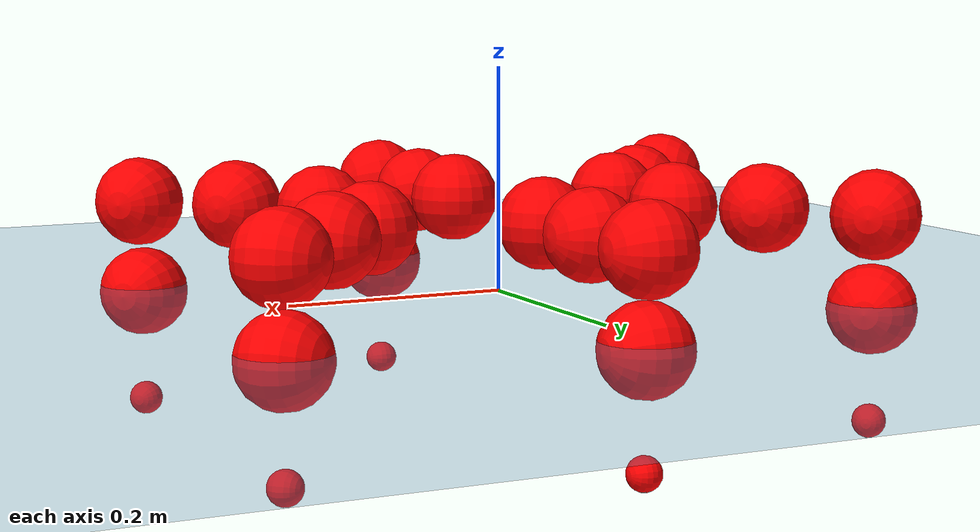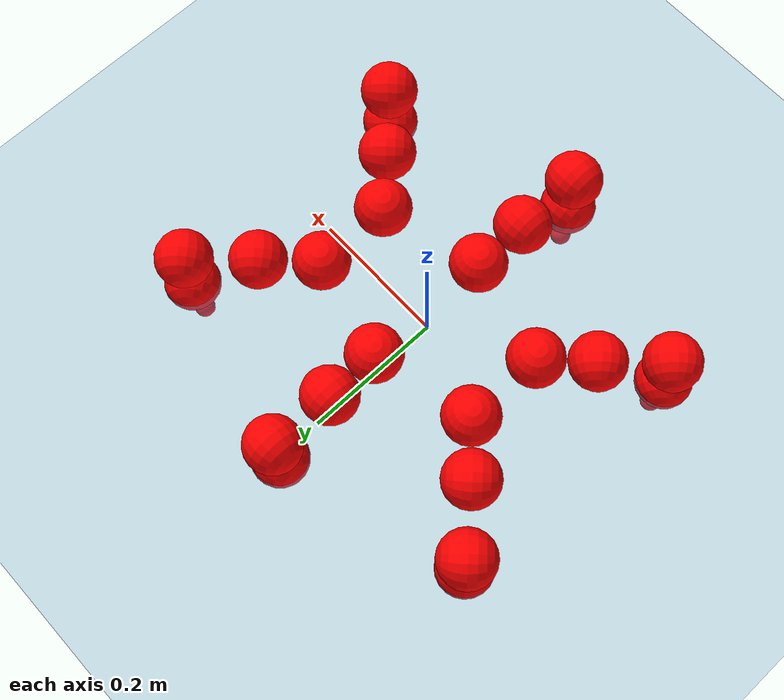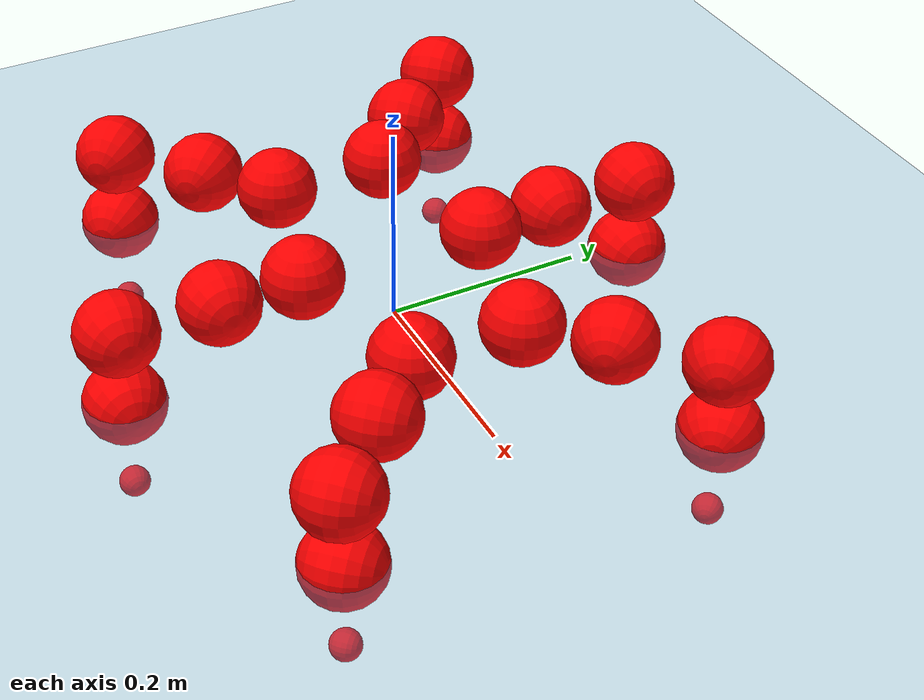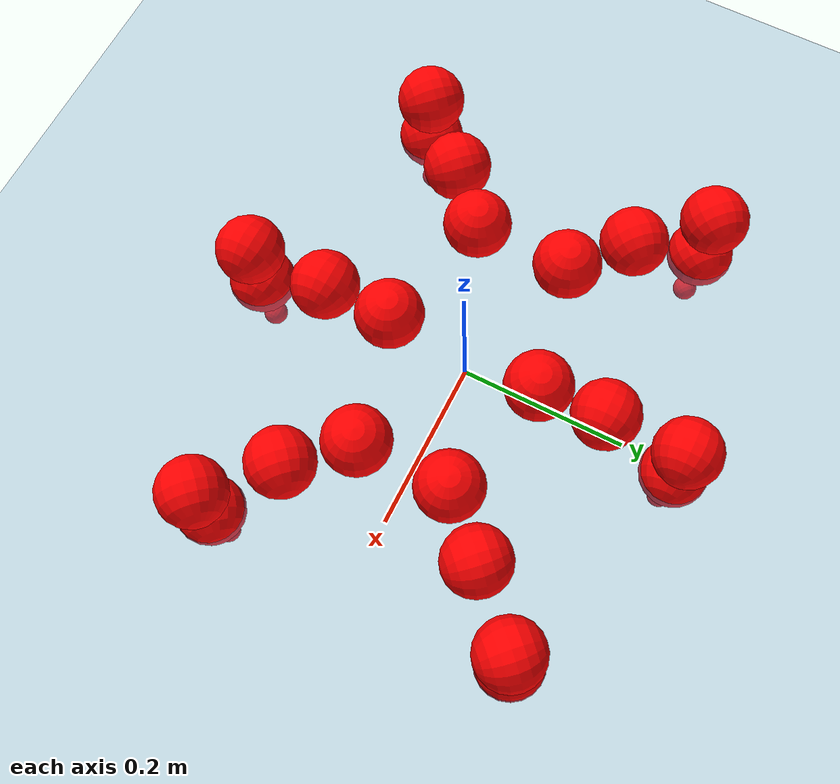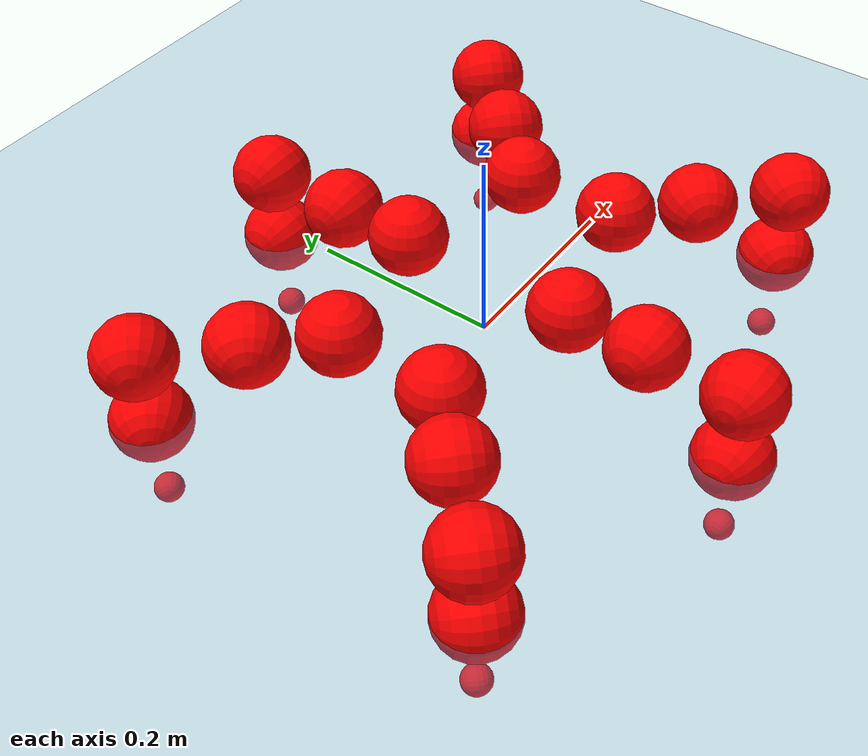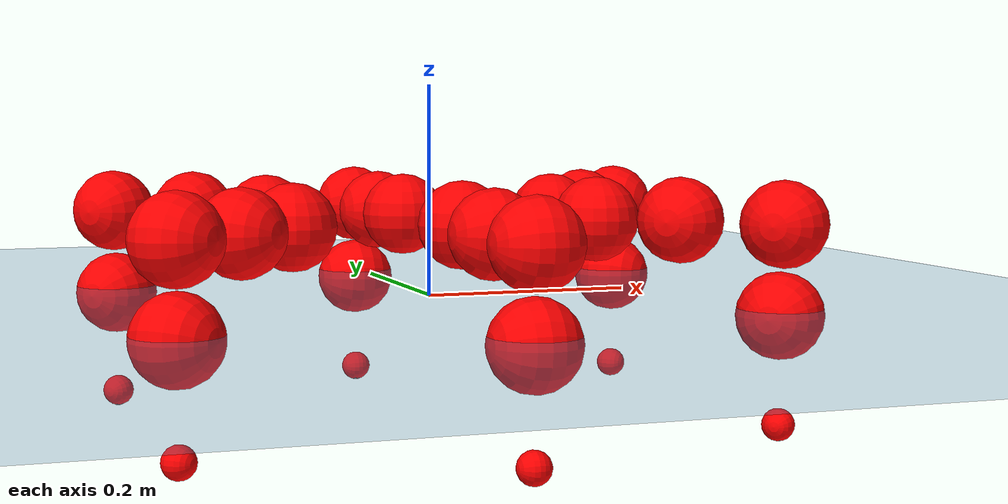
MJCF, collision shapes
<mujoco model="Golem">
  <compiler angle="radian" assetdir="assets" balanceinertia="true" inertiafromgeom="false"/>

  <option timestep="0.005" density="1.2" viscosity="2e-05"/>

  <size nkey="1"/>

  <visual>
    <quality shadowsize="8192"/>
    <map shadowclip="0.5"/>
  </visual>

  <default>
    <default class="/">
      <joint armature="0.01" damping="0.01" frictionloss="0.01"/>
      <geom contype="0" conaffinity="0" group="1" solref="-1000 -80"/>
      <site size="0.01 0.005 0.005" group="5"/>
      <general forcelimited="true" biastype="affine" gainprm="25" biasprm="0 -25 -0.5"/>
      <default class="visual">
        <geom type="mesh" group="2"/>
      </default>
      <default class="collision">
        <geom group="3"/>
      </default>
      <default class="foot">
        <geom size="0.01 0 0" condim="6" group="4" priority="1" solimp="0.015 1 0.01"/>
      </default>
      <default class="reward_collision_sphere">
        <geom group="5" rgba="1 0 0 1"/>
      </default>
    </default>
  </default>

  <asset>
    <texture type="skybox" colorspace="auto" name="//unnamed_texture_0" builtin="gradient" rgb1="0.95 0.95 0.95" rgb2="0.95 0.95 0.95" width="100" height="600"/>
    <texture type="2d" colorspace="auto" name="texplane" builtin="checker" rgb1="0.345 0.575 0.748" rgb2="0.345 0.575 0.748" markrgb="1 1 1" width="512" height="512"/>
    <material name="MatPlane" class="/" texture="texplane" texuniform="true" texrepeat="2 2" specular="0.9"/>
    <mesh name="body" class="/" file="body.stl" scale="0.001 0.001 0.001"/>
    <mesh name="coxa" class="/" file="coxa.stl" scale="0.001 0.001 0.001"/>
    <mesh name="femur" class="/" file="femur.stl" scale="0.001 0.001 0.001"/>
    <mesh name="tibia" class="/" file="tibia.stl" scale="0.001 0.001 0.001"/>
    <mesh name="tarsus" class="/" file="tarsus.stl" scale="0.001 0.001 0.001"/>
  </asset>

  <worldbody>
    <geom name="floor" class="/" size="100 100 0.125" type="plane" group="0" material="MatPlane"/>
    <light name="toplight_shadow" class="/" pos="0 0 5" dir="0.0990148 0.0990148 -0.990148" type="directional" ambient="0.04 0.04 0.04" diffuse="0.55 0.55 0.55" specular="0.12 0.12 0.12"/>
    <light name="toplight_fill" class="/" pos="0 0 5" dir="0.0990148 0.0990148 -0.990148" type="directional" castshadow="false" ambient="0.04 0.04 0.04" diffuse="0.3 0.3 0.3" specular="0.08 0.08 0.08"/>
    <body name="trunk" pos="7.17494e-05 0.000107671 -0.00281577" quat="0.999999 -0.000371591 -0.0010033 0.000520949">
      <inertial pos="0.00279282 -0.00272446 -0.000340804" quat="0.999962 0.00630358 0.00148367 -0.00590706" mass="3.51815" diaginertia="0.00666795 0.00593948 0.0212964"/>
      <joint name="//unnamed_joint_0" type="free"/>
      <geom name="//unnamed_geom_1" class="/" pos="0 0 0.0744554" quat="1 0 0 0" type="mesh" rgba="0.9 0.9 0.9 1" mesh="body"/>
      <site name="imu" class="/" pos="0.114972 0.0112137 0.120135" size="0.0100146"/>
      <camera name="track" class="/" pos="0 -1.82657 0" quat="0.707107 0.707107 0 0" mode="trackcom"/>
      <camera name="ego_camera" class="/" pos="0.120607 0 0.116337" quat="-0.5 -0.5 0.5 0.5"/>
      <body name="coxa_RR" pos="-0.166081 -0.0763149 0.0760979" quat="0.382521 -0.000175854 1.30623e-05 -0.923947">
        <inertial pos="0.00254973 0.00170642 -0.0025481" quat="0.999924 0.00667995 0.00829214 -0.00622495" mass="0.202904" diaginertia="0.00665124 0.00639622 0.0210461"/>
        <joint name="coxa_joint_RR" class="/" pos="0 0 0" axis="-0.00026223 -0.00514177 -0.999987" stiffness="0.00395892" range="-3.09059 3.1068" armature="0.00988038" damping="0" frictionloss="0.0110748"/>
        <geom name="//unnamed_geom_2" class="/" type="mesh" rgba="0.2 0.2 0.2 1" mesh="coxa"/>
        <geom name="//unnamed_geom_3" class="reward_collision_sphere" size="0.0400586" pos="-0.0278323 0 0"/>
        <body name="femur_RR" pos="0.0523551 -0.00193532 0.000377353" quat="0.499549 -0.500423 0.499869 0.500158">
          <inertial pos="0.000258135 0.000945523 0.00275987" quat="0.9999 0.012425 -0.00410289 -0.00537597" mass="0.193464" diaginertia="0.00694357 0.00599834 0.0208642"/>
          <joint name="femur_joint_RR" class="/" pos="0 0 0" axis="0.00224745 -0.00265249 -0.999994" range="-3.10504 3.10381" armature="0.0110617" damping="0.0132828" frictionloss="0.0100204"/>
          <geom name="//unnamed_geom_4" class="/" type="mesh" rgba="0.9 0.9 0.9 1" mesh="femur"/>
          <geom name="//unnamed_geom_5" class="reward_collision_sphere" size="0.0400586"/>
          <body name="tibia_RR" pos="-0.00269565 -0.0963721 0.00126882" quat="6.02132e-05 1 0.000102421 0.000265451">
            <inertial pos="-0.000392393 0.00149625 2.96224e-05" quat="1 -8.62399e-06 -1.94494e-06 5.61504e-06" mass="0.195991" diaginertia="0.00672337 0.00616476 0.0208521"/>
            <joint name="tibia_joint_RR" class="/" pos="0 0 0" axis="-0.00118394 0.00897989 0.999959" range="-3.11099 3.14636" armature="0.00847577" damping="0.0119255" frictionloss="0.0101938"/>
            <geom name="//unnamed_geom_6" class="/" type="mesh" rgba="0.2 0.2 0.2 1" mesh="tibia"/>
            <geom name="//unnamed_geom_7" class="reward_collision_sphere" size="0.0400586"/>
            <body name="tarsus_RR" pos="0.0809733 0.00255149 -0.00105905" quat="0.999999 0.0011413 -0.000618685 -0.000545118">
              <inertial pos="0.0586088 0.000380674 0.00276449" quat="0.497366 0.509466 0.501974 0.491013" mass="0.19664" diaginertia="0.00670689 0.00610045 0.0209097"/>
              <joint name="tarsus_joint_RR" class="/" pos="0 0 0" axis="0.0114218 0.00920384 0.999892" range="-3.19572 3.15837" armature="0.00916038" damping="0.0174658" frictionloss="0.00972446"/>
              <geom name="//unnamed_geom_8" class="/" type="mesh" rgba="0.9 0.9 0.9 1" mesh="tarsus"/>
              <geom name="foot_1" class="foot" size="0.00920107" pos="0.103907 0 0" quat="0 -0.707107 0 0.707107"/>
              <geom name="//unnamed_geom_10" class="reward_collision_sphere" size="0.0400586"/>
              <geom name="//unnamed_geom_11" class="reward_collision_sphere" size="0.015022" pos="0.0997325 0 0"/>
              <site name="foot_1" class="foot" pos="0.103907 0 0" quat="0 -0.707107 0 0.707107" size="0.0100146"/>
            </body>
          </body>
        </body>
      </body>
      <body name="coxa_RM" pos="0.000455833 -0.122408 0.0771851" quat="0.707012 2.84427e-05 0.000179724 -0.707202">
        <inertial pos="-0.000702266 0.000113003 -0.00209394" quat="0.999992 -0.00334024 0.00209788 0.000189634" mass="0.195783" diaginertia="0.00684394 0.0065174 0.0221807"/>
        <joint name="coxa_joint_RM" class="/" pos="0 0 0" axis="-0.00384639 3.82675e-05 -0.999993" range="-3.13512 3.08277" armature="0.00938413" damping="0.0161137" frictionloss="0.0114179"/>
        <geom name="//unnamed_geom_12" class="/" type="mesh" rgba="0.2 0.2 0.2 1" mesh="coxa"/>
        <geom name="//unnamed_geom_13" class="reward_collision_sphere" size="0.0400586" pos="-0.0278323 0 0"/>
        <body name="femur_RM" pos="0.0548522 6.14087e-05 -0.00181912" quat="0.500155 -0.500217 0.499716 0.499911">
          <inertial pos="-0.000222852 0.00261387 0.000204822" quat="1 0.000586523 -8.00209e-05 -0.000385554" mass="0.209224" diaginertia="0.00673332 0.00644792 0.0207275"/>
          <joint name="femur_joint_RM" class="/" pos="0 0 0" axis="-5.82643e-05 -0.00102187 -0.999999" range="-3.09286 3.19316" armature="0.0114041" damping="0.0208213" frictionloss="0.0109491"/>
          <geom name="//unnamed_geom_14" class="/" type="mesh" rgba="0.9 0.9 0.9 1" mesh="femur"/>
          <geom name="//unnamed_geom_15" class="reward_collision_sphere" size="0.0400586"/>
          <body name="tibia_RM" pos="5.13248e-05 -0.0984637 -0.000252864" quat="0.00020071 1 0.000148803 -0.000387644">
            <inertial pos="-0.00108948 0.000157442 0.00256275" quat="0.999999 -0.000497373 0.000527143 0.00140852" mass="0.204301" diaginertia="0.00692501 0.00630789 0.0205473"/>
            <joint name="tibia_joint_RM" class="/" pos="0 0 0" axis="0.000782241 0.00637305 0.999979" range="-3.09286 3.19454" armature="0.00935434" damping="0.0195051" frictionloss="0.0107722"/>
            <geom name="//unnamed_geom_16" class="/" type="mesh" rgba="0.2 0.2 0.2 1" mesh="tibia"/>
            <geom name="//unnamed_geom_17" class="reward_collision_sphere" size="0.0400586"/>
            <body name="tarsus_RM" pos="0.0814535 -0.000351189 0.00106615" quat="0.999999 0.00126963 -0.000525605 -0.000125092">
              <inertial pos="0.0556817 -0.0015126 0.000217036" quat="0.500226 0.5014 0.499191 0.49918" mass="0.211368" diaginertia="0.00709811 0.0064843 0.021618"/>
              <joint name="tarsus_joint_RM" class="/" pos="0 0 0" axis="0.00338978 0.0103946 0.99994" range="-3.09755 3.12995" armature="0.00871661" damping="0.0149238" frictionloss="0.010394"/>
              <geom name="//unnamed_geom_18" class="/" type="mesh" rgba="0.9 0.9 0.9 1" mesh="tarsus"/>
              <geom name="foot_2" class="foot" size="0.00894328" pos="0.103907 0 0" quat="0 -0.707107 0 0.707107"/>
              <geom name="//unnamed_geom_20" class="reward_collision_sphere" size="0.0400586"/>
              <geom name="//unnamed_geom_21" class="reward_collision_sphere" size="0.015022" pos="0.0997325 0 0"/>
              <site name="foot_2" class="foot" pos="0.103907 0 0" quat="0 -0.707107 0 0.707107" size="0.0100146"/>
            </body>
          </body>
        </body>
      </body>
      <body name="coxa_RF" pos="0.167191 -0.0763331 0.0762746" quat="0.923882 -0.000317652 -0.000716281 -0.382676">
        <inertial pos="-0.00131803 -0.00112248 -0.00240418" quat="0.9999 -0.00627666 0.00218111 0.0125122" mass="0.198895" diaginertia="0.00684517 0.00631984 0.0214404"/>
        <joint name="coxa_joint_RF" class="/" pos="0 0 0" axis="0.00313504 0.000340647 -0.999995" range="-3.1601 3.08178" armature="0.0100316" damping="0.0118131" frictionloss="0.0109076"/>
        <geom name="//unnamed_geom_22" class="/" type="mesh" rgba="0.2 0.2 0.2 1" mesh="coxa"/>
        <geom name="//unnamed_geom_23" class="reward_collision_sphere" size="0.0400586" pos="-0.0278323 0 0"/>
        <body name="femur_RF" pos="0.0560807 -0.00210559 0.00155392" quat="0.499568 -0.499345 0.500051 0.501034">
          <inertial pos="-0.000265779 -0.000543256 -0.000938154" quat="0.999902 -0.00913241 0.00512188 0.00924895" mass="0.200114" diaginertia="0.00660172 0.00618069 0.0205187"/>
          <joint name="femur_joint_RF" class="/" pos="0 0 0" axis="0.000262008 -0.0107672 -0.999942" stiffness="0.000395314" range="-3.08832 3.14816" armature="0.00955192" damping="0.00878514" frictionloss="0.0096782"/>
          <geom name="//unnamed_geom_24" class="/" type="mesh" rgba="0.9 0.9 0.9 1" mesh="femur"/>
          <geom name="//unnamed_geom_25" class="reward_collision_sphere" size="0.0400586"/>
          <body name="tibia_RF" pos="0.000696007 -0.0971843 0.00144286" quat="0.000991771 0.999999 4.94615e-05 -0.00046526">
            <inertial pos="0.000236837 -0.00158824 -0.00239697" quat="0.999957 -9.49288e-05 0.00482513 -0.00797354" mass="0.205957" diaginertia="0.00666045 0.00628022 0.0214562"/>
            <joint name="tibia_joint_RF" class="/" pos="0 0 0" axis="-0.0069311 -0.00347966 0.99997" stiffness="0.0167519" range="-3.19357 3.12213" armature="0.00950561" damping="0.0304613" frictionloss="0.00859451"/>
            <geom name="//unnamed_geom_26" class="/" type="mesh" rgba="0.2 0.2 0.2 1" mesh="tibia"/>
            <geom name="//unnamed_geom_27" class="reward_collision_sphere" size="0.0400586"/>
            <body name="tarsus_RF" pos="0.082667 -0.00292152 -0.000418073" quat="1 -1.82636e-05 -5.85245e-05 -1.40684e-06">
              <inertial pos="0.0573335 0.000169722 0.00086141" quat="0.50804 0.498379 0.499421 0.494058" mass="0.191791" diaginertia="0.00643162 0.00597217 0.0205364"/>
              <joint name="tarsus_joint_RF" class="/" pos="0 0 0" axis="-0.00269524 0.0039612 0.999989" stiffness="0.00512705" range="-3.13276 3.12761" armature="0.0093058" damping="0.0053264" frictionloss="0.0114261"/>
              <geom name="//unnamed_geom_28" class="/" type="mesh" rgba="0.9 0.9 0.9 1" mesh="tarsus"/>
              <geom name="foot_3" class="foot" size="0.0107861" pos="0.103907 0 0" quat="0 -0.707107 0 0.707107"/>
              <geom name="//unnamed_geom_30" class="reward_collision_sphere" size="0.0400586"/>
              <geom name="//unnamed_geom_31" class="reward_collision_sphere" size="0.015022" pos="0.0997325 0 0"/>
              <site name="foot_3" class="foot" pos="0.103907 0 0" quat="0 -0.707107 0 0.707107" size="0.0100146"/>
            </body>
          </body>
        </body>
      </body>
      <body name="coxa_LR" pos="-0.164441 0.0782488 0.0776207" quat="0.383512 0.000165721 -0.000647776 0.923536">
        <inertial pos="-0.00257176 0.00214293 -0.00185392" quat="0.999998 -0.00136463 0.000849419 0.00108125" mass="0.203966" diaginertia="0.00674634 0.0061477 0.0213528"/>
        <joint name="coxa_joint_LR" class="/" pos="0 0 0" axis="-0.0149783 8.70672e-05 -0.999888" stiffness="0.0158804" range="-3.19061 3.17374" armature="0.00974943" damping="0.0162902" frictionloss="0.0113615"/>
        <geom name="//unnamed_geom_32" class="/" type="mesh" rgba="0.2 0.2 0.2 1" mesh="coxa"/>
        <geom name="//unnamed_geom_33" class="reward_collision_sphere" size="0.0400586" pos="-0.0278323 0 0"/>
        <body name="femur_LR" pos="0.054785 0.00199889 0.00159921" quat="0.499724 -0.499584 0.500872 0.499819">
          <inertial pos="-0.000989552 0.00262719 0.00174553" quat="0.999979 0.0052313 -0.00285485 0.00242657" mass="0.192252" diaginertia="0.00701773 0.00615701 0.0203375"/>
          <joint name="femur_joint_LR" class="/" pos="0 0 0" axis="0.000232795 0.000982101 0.999999" range="-3.19325 3.18352" armature="0.0102168" damping="0.00884672" frictionloss="0.00977813"/>
          <geom name="//unnamed_geom_34" class="/" type="mesh" rgba="0.9 0.9 0.9 1" mesh="femur"/>
          <geom name="//unnamed_geom_35" class="reward_collision_sphere" size="0.0400586"/>
          <body name="tibia_LR" pos="0.00108699 -0.0991536 -0.00307218" quat="0.000254614 0.999999 -0.00093441 0.000301438">
            <inertial pos="-0.00271214 0.00200363 0.00259718" quat="0.999906 -0.00618513 0.0113283 0.00467255" mass="0.207352" diaginertia="0.0069637 0.00661871 0.020864"/>
            <joint name="tibia_joint_LR" class="/" pos="0 0 0" axis="0.00472482 0.00549979 -0.999974" range="-3.11476 3.19211" armature="0.00870113" damping="0" frictionloss="0.0100992"/>
            <geom name="//unnamed_geom_36" class="/" type="mesh" rgba="0.2 0.2 0.2 1" mesh="tibia"/>
            <geom name="//unnamed_geom_37" class="reward_collision_sphere" size="0.0400586"/>
            <body name="tarsus_LR" pos="0.0829227 -0.00148122 0.000411925" quat="1 -1.66363e-05 -6.82328e-05 -4.25952e-05">
              <inertial pos="0.0551828 -0.00190403 0.00025288" quat="0.500134 0.499064 0.500627 0.500174" mass="0.192172" diaginertia="0.00672177 0.00623755 0.021538"/>
              <joint name="tarsus_joint_LR" class="/" pos="0 0 0" axis="-0.000607876 -0.000447919 -1" stiffness="0.00796245" range="-3.15232 3.19629" armature="0.00985961" damping="0.00604863" frictionloss="0.00859622"/>
              <geom name="//unnamed_geom_38" class="/" type="mesh" rgba="0.9 0.9 0.9 1" mesh="tarsus"/>
              <geom name="foot_4" class="foot" size="0.0111412" pos="0.103907 0 0" quat="0.707107 0 -0.707107 0"/>
              <geom name="//unnamed_geom_40" class="reward_collision_sphere" size="0.0400586"/>
              <geom name="//unnamed_geom_41" class="reward_collision_sphere" size="0.015022" pos="0.0997325 0 0"/>
              <site name="foot_4" class="foot" pos="0.103907 0 0" quat="0.707107 0 -0.707107 0" size="0.0100146"/>
            </body>
          </body>
        </body>
      </body>
      <body name="coxa_LM" pos="0.00241312 0.119774 0.0745489" quat="0.707146 0.000511037 4.80105e-05 0.707067">
        <inertial pos="-9.25127e-05 -0.000605978 -0.00133567" quat="1 0.000545255 0.000381934 0.00033432" mass="0.198284" diaginertia="0.00721334 0.00644874 0.0215344"/>
        <joint name="coxa_joint_LM" class="/" pos="0 0 0" axis="0.0127249 -0.00660814 -0.999897" range="-3.14242 3.15799" armature="0.0110064" damping="0.00666836" frictionloss="0.00998436"/>
        <geom name="//unnamed_geom_42" class="/" type="mesh" rgba="0.2 0.2 0.2 1" mesh="coxa"/>
        <geom name="//unnamed_geom_43" class="reward_collision_sphere" size="0.0400586" pos="-0.0278323 0 0"/>
        <body name="femur_LM" pos="0.0519219 0.00272761 -0.000779319" quat="0.499778 -0.500631 0.499974 0.499616">
          <inertial pos="-0.00257146 0.000674328 -0.000628658" quat="0.999915 0.00719547 0.0106809 -0.00203933" mass="0.194402" diaginertia="0.00665488 0.00610351 0.0204098"/>
          <joint name="femur_joint_LM" class="/" pos="0 0 0" axis="-0.0103557 0.00574463 0.99993" stiffness="0.00736926" range="-3.12002 3.12234" armature="0.00871951" damping="0.00220825" frictionloss="0.00889677"/>
          <geom name="//unnamed_geom_44" class="/" type="mesh" rgba="0.9 0.9 0.9 1" mesh="femur"/>
          <geom name="//unnamed_geom_45" class="reward_collision_sphere" size="0.0400586"/>
          <body name="tibia_LM" pos="-0.000390196 -0.0961949 -0.000705014" quat="0.000301405 0.999999 0.00102037 -0.000968557">
            <inertial pos="0.00270409 -9.20339e-05 -0.000330037" quat="1 -2.21982e-05 -0.000136675 0.000143641" mass="0.207062" diaginertia="0.00684048 0.00628814 0.0210811"/>
            <joint name="tibia_joint_LM" class="/" pos="0 0 0" axis="-0.00904181 0.00762402 -0.99993" stiffness="0.00167179" range="-3.09328 3.08324" armature="0.00997243" damping="0.00899367" frictionloss="0.0112081"/>
            <geom name="//unnamed_geom_46" class="/" type="mesh" rgba="0.2 0.2 0.2 1" mesh="tibia"/>
            <geom name="//unnamed_geom_47" class="reward_collision_sphere" size="0.0400586"/>
            <body name="tarsus_LM" pos="0.0803146 -0.00183881 0.000188178" quat="1 -6.55642e-06 0.00012423 3.80642e-05">
              <inertial pos="0.0529392 -0.00186427 3.33972e-06" quat="0.496869 0.511469 0.498097 0.493376" mass="0.201044" diaginertia="0.00673955 0.00631043 0.0206682"/>
              <joint name="tarsus_joint_LM" class="/" pos="0 0 0" axis="-0.00485494 -0.013971 -0.999891" stiffness="0.00673136" range="-3.1341 3.13935" armature="0.00977875" damping="0.0127489" frictionloss="0.0104675"/>
              <geom name="//unnamed_geom_48" class="/" type="mesh" rgba="0.9 0.9 0.9 1" mesh="tarsus"/>
              <geom name="foot_5" class="foot" size="0.0111756" pos="0.103907 0 0" quat="0.707107 0 -0.707107 0"/>
              <geom name="//unnamed_geom_50" class="reward_collision_sphere" size="0.0400586"/>
              <geom name="//unnamed_geom_51" class="reward_collision_sphere" size="0.015022" pos="0.0997325 0 0"/>
              <site name="foot_5" class="foot" pos="0.103907 0 0" quat="0.707107 0 -0.707107 0" size="0.0100146"/>
            </body>
          </body>
        </body>
      </body>
      <body name="coxa_LF" pos="0.166804 0.0750155 0.0738923" quat="0.923702 -0.000209737 0.000597201 0.383112">
        <inertial pos="-0.00135716 -0.000400969 -0.00266886" quat="0.999972 0.0018868 -0.00715776 -0.00147852" mass="0.19571" diaginertia="0.00665612 0.00611267 0.0213149"/>
        <joint name="coxa_joint_LF" class="/" pos="0 0 0" axis="-0.000375653 0.00498662 -0.999987" range="-3.19607 3.13972" armature="0.0111256" damping="0.0177747" frictionloss="0.00872173"/>
        <geom name="//unnamed_geom_52" class="/" type="mesh" rgba="0.2 0.2 0.2 1" mesh="coxa"/>
        <geom name="//unnamed_geom_53" class="reward_collision_sphere" size="0.0400586" pos="-0.0278323 0 0"/>
        <body name="femur_LF" pos="0.0571323 0.00152226 0.000964241" quat="0.499208 -0.500165 0.500896 0.49973">
          <inertial pos="0.000257921 -0.00302335 0.00146981" quat="0.999999 0.000793704 0.00124747 5.66445e-05" mass="0.199929" diaginertia="0.0066024 0.00619678 0.0207565"/>
          <joint name="femur_joint_LF" class="/" pos="0 0 0" axis="-0.00722541 0.00650377 0.999953" range="-3.19293 3.18899" armature="0.0101793" damping="0" frictionloss="0.0102448"/>
          <geom name="//unnamed_geom_54" class="/" type="mesh" rgba="0.9 0.9 0.9 1" mesh="femur"/>
          <geom name="//unnamed_geom_55" class="reward_collision_sphere" size="0.0400586"/>
          <body name="tibia_LF" pos="0.00016331 -0.0993805 0.00148997" quat="0.000546821 0.999999 0.000798223 -0.00100301">
            <inertial pos="0.00272964 0.00189536 -0.00273967" quat="0.999987 -0.000865904 -0.00508033 -1.103e-05" mass="0.205499" diaginertia="0.00655601 0.00634275 0.0203081"/>
            <joint name="tibia_joint_LF" class="/" pos="0 0 0" axis="0.0122439 -0.00285388 -0.999921" stiffness="0.00776862" range="-3.16109 3.08974" armature="0.00892528" damping="0.0131643" frictionloss="0.0106702"/>
            <geom name="//unnamed_geom_56" class="/" type="mesh" rgba="0.2 0.2 0.2 1" mesh="tibia"/>
            <geom name="//unnamed_geom_57" class="reward_collision_sphere" size="0.0400586"/>
            <body name="tarsus_LF" pos="0.0791864 0.00213888 -0.00257108" quat="1 0.000118714 3.44645e-05 3.84031e-05">
              <inertial pos="0.0557782 0.00160956 -0.0012497" quat="0.499844 0.501021 0.499392 0.499742" mass="0.194066" diaginertia="0.00675488 0.00630202 0.0214295"/>
              <joint name="tarsus_joint_LF" class="/" pos="0 0 0" axis="-0.0001314 0.00117705 -0.999999" stiffness="0.0270474" range="-3.08678 3.08522" armature="0.0099728" damping="0.0273621" frictionloss="0.00870925"/>
              <geom name="//unnamed_geom_58" class="/" type="mesh" rgba="0.9 0.9 0.9 1" mesh="tarsus"/>
              <geom name="foot_6" class="foot" size="0.0105386" pos="0.103907 0 0" quat="0.707107 0 -0.707107 0"/>
              <geom name="//unnamed_geom_60" class="reward_collision_sphere" size="0.0400586"/>
              <geom name="//unnamed_geom_61" class="reward_collision_sphere" size="0.015022" pos="0.0997325 0 0"/>
              <site name="foot_6" class="foot" pos="0.103907 0 0" quat="0.707107 0 -0.707107 0" size="0.0100146"/>
            </body>
          </body>
        </body>
      </body>
    </body>
  </worldbody>

  <contact>
    <pair class="/" geom1="floor" geom2="foot_1" name="//unnamed_contact_0"/>
    <pair class="/" geom1="floor" geom2="foot_2" name="//unnamed_contact_1"/>
    <pair class="/" geom1="floor" geom2="foot_3" name="//unnamed_contact_2"/>
    <pair class="/" geom1="floor" geom2="foot_4" name="//unnamed_contact_3"/>
    <pair class="/" geom1="floor" geom2="foot_5" name="//unnamed_contact_4"/>
    <pair class="/" geom1="floor" geom2="foot_6" name="//unnamed_contact_5"/>
  </contact>

  <actuator>
    <general name="coxa_joint_RR" class="/" joint="coxa_joint_RR" forcerange="-7.36841 7.36841" gainprm="23.701" biasprm="0 -23.701 -0.547107"/>
    <general name="femur_joint_RR" class="/" joint="femur_joint_RR" forcerange="-7.65588 7.65588" gainprm="23.701" biasprm="0 -23.701 -0.547107"/>
    <general name="tibia_joint_RR" class="/" joint="tibia_joint_RR" forcerange="-7.17505 7.17505" gainprm="23.701" biasprm="0 -23.701 -0.547107"/>
    <general name="tarsus_joint_RR" class="/" joint="tarsus_joint_RR" forcerange="-7.96524 7.96524" gainprm="23.701" biasprm="0 -23.701 -0.547107"/>
    <general name="coxa_joint_RM" class="/" joint="coxa_joint_RM" forcerange="-6.69301 6.69301" gainprm="23.701" biasprm="0 -23.701 -0.547107"/>
    <general name="femur_joint_RM" class="/" joint="femur_joint_RM" forcerange="-7.95313 7.95313" gainprm="23.701" biasprm="0 -23.701 -0.547107"/>
    <general name="tibia_joint_RM" class="/" joint="tibia_joint_RM" forcerange="-7.72087 7.72087" gainprm="23.701" biasprm="0 -23.701 -0.547107"/>
    <general name="tarsus_joint_RM" class="/" joint="tarsus_joint_RM" forcerange="-7.97943 7.97943" gainprm="23.701" biasprm="0 -23.701 -0.547107"/>
    <general name="coxa_joint_RF" class="/" joint="coxa_joint_RF" forcerange="-6.6539 6.6539" gainprm="23.701" biasprm="0 -23.701 -0.547107"/>
    <general name="femur_joint_RF" class="/" joint="femur_joint_RF" forcerange="-7.1886 7.1886" gainprm="23.701" biasprm="0 -23.701 -0.547107"/>
    <general name="tibia_joint_RF" class="/" joint="tibia_joint_RF" forcerange="-7.85749 7.85749" gainprm="23.701" biasprm="0 -23.701 -0.547107"/>
    <general name="tarsus_joint_RF" class="/" joint="tarsus_joint_RF" forcerange="-7.27099 7.27099" gainprm="23.701" biasprm="0 -23.701 -0.547107"/>
    <general name="coxa_joint_LR" class="/" joint="coxa_joint_LR" forcerange="-7.3986 7.3986" gainprm="23.701" biasprm="0 -23.701 -0.547107"/>
    <general name="femur_joint_LR" class="/" joint="femur_joint_LR" forcerange="-7.39223 7.39223" gainprm="23.701" biasprm="0 -23.701 -0.547107"/>
    <general name="tibia_joint_LR" class="/" joint="tibia_joint_LR" forcerange="-7.55677 7.55677" gainprm="23.701" biasprm="0 -23.701 -0.547107"/>
    <general name="tarsus_joint_LR" class="/" joint="tarsus_joint_LR" forcerange="-7.0482 7.0482" gainprm="23.701" biasprm="0 -23.701 -0.547107"/>
    <general name="coxa_joint_LM" class="/" joint="coxa_joint_LM" forcerange="-7.15988 7.15988" gainprm="23.701" biasprm="0 -23.701 -0.547107"/>
    <general name="femur_joint_LM" class="/" joint="femur_joint_LM" forcerange="-7.25244 7.25244" gainprm="23.701" biasprm="0 -23.701 -0.547107"/>
    <general name="tibia_joint_LM" class="/" joint="tibia_joint_LM" forcerange="-7.34426 7.34426" gainprm="23.701" biasprm="0 -23.701 -0.547107"/>
    <general name="tarsus_joint_LM" class="/" joint="tarsus_joint_LM" forcerange="-7.95066 7.95066" gainprm="23.701" biasprm="0 -23.701 -0.547107"/>
    <general name="coxa_joint_LF" class="/" joint="coxa_joint_LF" forcerange="-6.55146 6.55146" gainprm="23.701" biasprm="0 -23.701 -0.547107"/>
    <general name="femur_joint_LF" class="/" joint="femur_joint_LF" forcerange="-7.28993 7.28993" gainprm="23.701" biasprm="0 -23.701 -0.547107"/>
    <general name="tibia_joint_LF" class="/" joint="tibia_joint_LF" forcerange="-7.44048 7.44048" gainprm="23.701" biasprm="0 -23.701 -0.547107"/>
    <general name="tarsus_joint_LF" class="/" joint="tarsus_joint_LF" forcerange="-7.42405 7.42405" gainprm="23.701" biasprm="0 -23.701 -0.547107"/>
  </actuator>

  <sensor>
    <gyro site="imu" name="imu_angular_velocity"/>
    <velocimeter site="imu" name="imu_linear_velocity"/>
    <framelinvel objtype="site" objname="foot_1" name="foot_1_global_linear_velocity"/>
    <framelinvel objtype="site" objname="foot_2" name="foot_2_global_linear_velocity"/>
    <framelinvel objtype="site" objname="foot_3" name="foot_3_global_linear_velocity"/>
    <framelinvel objtype="site" objname="foot_4" name="foot_4_global_linear_velocity"/>
    <framelinvel objtype="site" objname="foot_5" name="foot_5_global_linear_velocity"/>
    <framelinvel objtype="site" objname="foot_6" name="foot_6_global_linear_velocity"/>
  </sensor>

  <keyframe>
    <key name="home" qpos="0 0 0.1457 1 0 0 0 0 0 0 0 0 0 0 0 0 0 0 0 0 0 0 0 0 0 0 0 0 0 0 0"/>
  </keyframe>
</mujoco>
